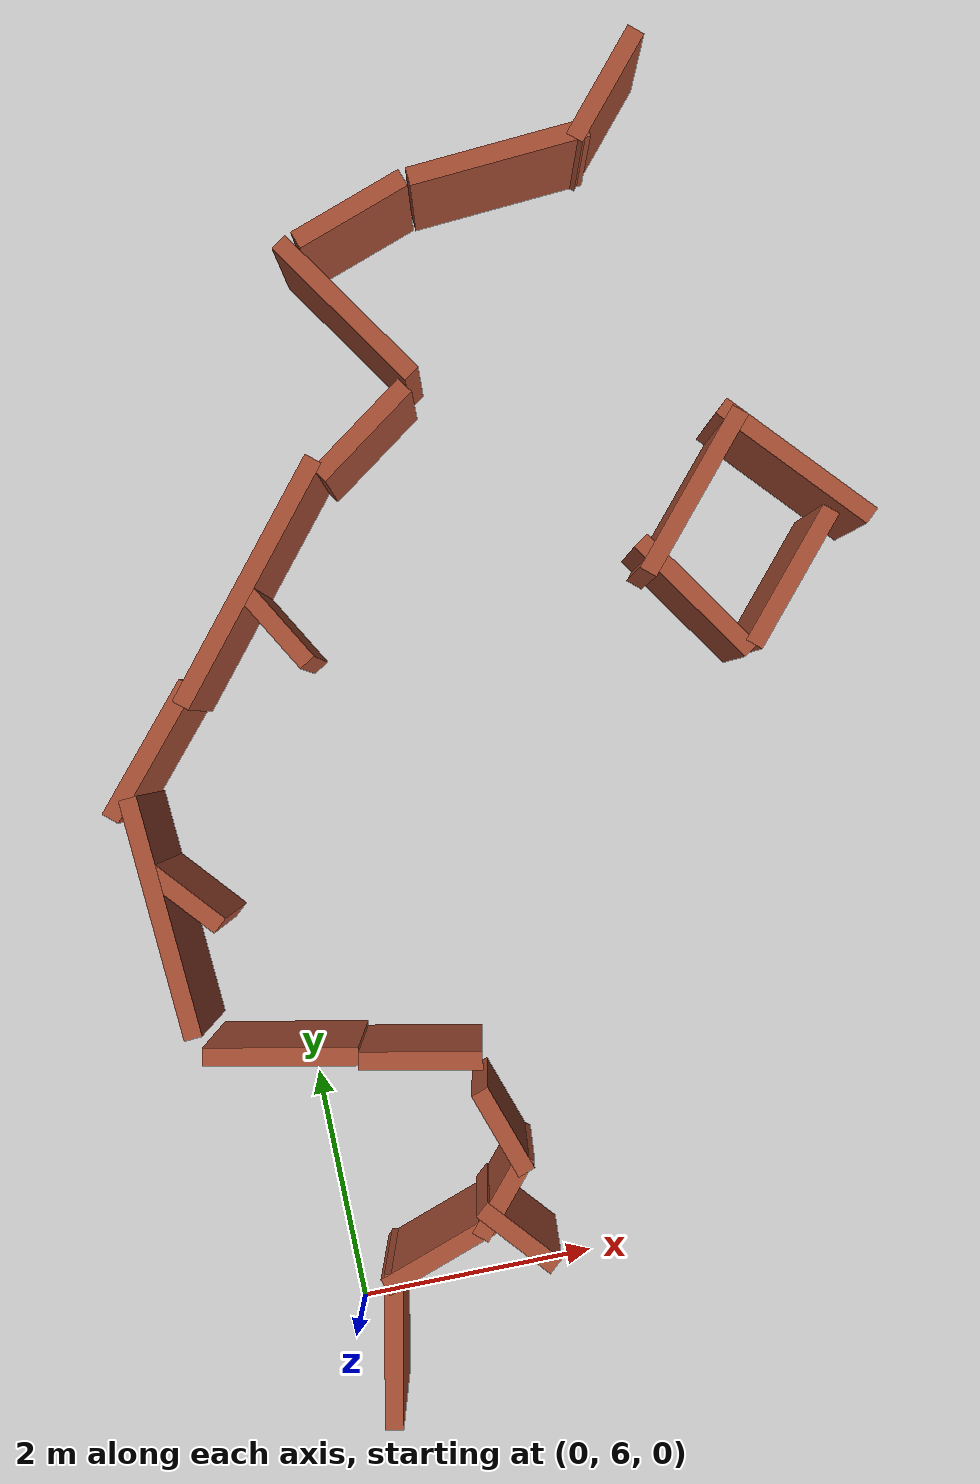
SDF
<sdf version="1.6">
 <world name="default">
  <model name="ground_plane">
   <static>1</static>
   <link name="link">
    <collision name="collision">
     <geometry><plane><normal>0 0 1</normal><size>100 100</size></plane></geometry>
     <surface><friction><ode><mu>100</mu><mu2>50</mu2></ode></friction></surface>
    </collision>
    <visual name="visual">
     <cast_shadows>0</cast_shadows>
     <geometry><plane><normal>0 0 1</normal><size>100 100</size></plane></geometry>
     <material>
      <script><uri>file://media/materials/scripts/gazebo.material</uri><name>Gazebo/Gray</name></script>
     </material>
    </visual>
   </link>
  </model>
  <model name="room5">
   <link name="Wall_3">
    <pose>2.38698 -7.56027 0 0 -0 1.0472</pose>
    <visual name="Wall_3_Visual">
     <pose>0 0 1.25 0 -0 0</pose>
     <geometry><box><size>1 0.15 2.5</size></box></geometry>
     <material>
      <script><uri>file://media/materials/scripts/gazebo.material</uri><name>Gazebo/Bricks</name></script>
      <ambient>1 1 1 1</ambient>
      <shader type="pixel"/>
     </material>
     <meta><layer>0</layer></meta>
    </visual>
    <collision name="Wall_3_Collision">
     <pose>0 0 1.25 0 -0 0</pose>
     <geometry><box><size>1 0.15 2.5</size></box></geometry>
     <surface>
      <friction>
       <ode><mu>1</mu><mu2>1</mu2><fdir1>0 0 0</fdir1><slip1>0</slip1><slip2>0</slip2></ode>
       <torsional>
        <coefficient>1</coefficient>
        <patch_radius>0</patch_radius>
        <surface_radius>0</surface_radius>
        <use_patch_radius>1</use_patch_radius>
        <ode><slip>0</slip></ode>
       </torsional>
      </friction>
      <bounce><restitution_coefficient>0</restitution_coefficient><threshold>1e+06</threshold></bounce>
      <contact>
       <collide_without_contact>0</collide_without_contact>
       <collide_without_contact_bitmask>1</collide_without_contact_bitmask>
       <collide_bitmask>1</collide_bitmask>
       <ode>
        <soft_cfm>0</soft_cfm>
        <soft_erp>0.2</soft_erp>
        <kp>1e+13</kp>
        <kd>1</kd>
        <max_vel>0.01</max_vel>
        <min_depth>0</min_depth>
       </ode>
       <bullet>
        <split_impulse>1</split_impulse>
        <split_impulse_penetration_threshold>-0.01</split_impulse_penetration_threshold>
        <soft_cfm>0</soft_cfm>
        <soft_erp>0.2</soft_erp>
        <kp>1e+13</kp>
        <kd>1</kd>
       </bullet>
      </contact>
     </surface>
    </collision>
   </link>
   <link name="Wall_32">
    <pose>5.28652 -3.58139 0 0 -0 1.07102</pose>
    <visual name="Wall_32_Visual">
     <pose>0 0 1.25 0 -0 0</pose>
     <geometry><box><size>2.25 0.15 2.5</size></box></geometry>
     <material>
      <script><uri>file://media/materials/scripts/gazebo.material</uri><name>Gazebo/Bricks</name></script>
      <ambient>1 1 1 1</ambient>
      <shader type="pixel"/>
     </material>
     <meta><layer>0</layer></meta>
    </visual>
    <collision name="Wall_32_Collision">
     <pose>0 0 1.25 0 -0 0</pose>
     <geometry><box><size>2.25 0.15 2.5</size></box></geometry>
     <surface>
      <friction>
       <ode><mu>1</mu><mu2>1</mu2><fdir1>0 0 0</fdir1><slip1>0</slip1><slip2>0</slip2></ode>
       <torsional>
        <coefficient>1</coefficient>
        <patch_radius>0</patch_radius>
        <surface_radius>0</surface_radius>
        <use_patch_radius>1</use_patch_radius>
        <ode><slip>0</slip></ode>
       </torsional>
      </friction>
      <bounce><restitution_coefficient>0</restitution_coefficient><threshold>1e+06</threshold></bounce>
      <contact>
       <collide_without_contact>0</collide_without_contact>
       <collide_without_contact_bitmask>1</collide_without_contact_bitmask>
       <collide_bitmask>1</collide_bitmask>
       <ode>
        <soft_cfm>0</soft_cfm>
        <soft_erp>0.2</soft_erp>
        <kp>1e+13</kp>
        <kd>1</kd>
        <max_vel>0.01</max_vel>
        <min_depth>0</min_depth>
       </ode>
       <bullet>
        <split_impulse>1</split_impulse>
        <split_impulse_penetration_threshold>-0.01</split_impulse_penetration_threshold>
        <soft_cfm>0</soft_cfm>
        <soft_erp>0.2</soft_erp>
        <kp>1e+13</kp>
        <kd>1</kd>
       </bullet>
      </contact>
     </surface>
    </collision>
   </link>
   <link name="Wall_33">
    <pose>5.99667 -0.885929 0 0 -0 1.8326</pose>
    <visual name="Wall_33_Visual">
     <pose>0 0 1.25 0 -0 0</pose>
     <geometry><box><size>2 0.15 2.5</size></box></geometry>
     <material>
      <script><uri>file://media/materials/scripts/gazebo.material</uri><name>Gazebo/Bricks</name></script>
      <ambient>1 1 1 1</ambient>
      <shader type="pixel"/>
     </material>
     <meta><layer>0</layer></meta>
    </visual>
    <collision name="Wall_33_Collision">
     <pose>0 0 1.25 0 -0 0</pose>
     <geometry><box><size>2 0.15 2.5</size></box></geometry>
     <surface>
      <friction>
       <ode><mu>1</mu><mu2>1</mu2><fdir1>0 0 0</fdir1><slip1>0</slip1><slip2>0</slip2></ode>
       <torsional>
        <coefficient>1</coefficient>
        <patch_radius>0</patch_radius>
        <surface_radius>0</surface_radius>
        <use_patch_radius>1</use_patch_radius>
        <ode><slip>0</slip></ode>
       </torsional>
      </friction>
      <bounce><restitution_coefficient>0</restitution_coefficient><threshold>1e+06</threshold></bounce>
      <contact>
       <collide_without_contact>0</collide_without_contact>
       <collide_without_contact_bitmask>1</collide_without_contact_bitmask>
       <collide_bitmask>1</collide_bitmask>
       <ode>
        <soft_cfm>0</soft_cfm>
        <soft_erp>0.2</soft_erp>
        <kp>1e+13</kp>
        <kd>1</kd>
        <max_vel>0.01</max_vel>
        <min_depth>0</min_depth>
       </ode>
       <bullet>
        <split_impulse>1</split_impulse>
        <split_impulse_penetration_threshold>-0.01</split_impulse_penetration_threshold>
        <soft_cfm>0</soft_cfm>
        <soft_erp>0.2</soft_erp>
        <kp>1e+13</kp>
        <kd>1</kd>
       </bullet>
      </contact>
     </surface>
    </collision>
   </link>
   <link name="Wall_34">
    <pose>5.03984 0.226363 0 0 -0 0</pose>
    <visual name="Wall_34_Visual">
     <pose>0 0 1.25 0 -0 0</pose>
     <geometry><box><size>1.25 0.15 2.5</size></box></geometry>
     <material>
      <script><uri>file://media/materials/scripts/gazebo.material</uri><name>Gazebo/Bricks</name></script>
      <ambient>1 1 1 1</ambient>
      <shader type="pixel"/>
     </material>
     <meta><layer>0</layer></meta>
    </visual>
    <collision name="Wall_34_Collision">
     <pose>0 0 1.25 0 -0 0</pose>
     <geometry><box><size>1.25 0.15 2.5</size></box></geometry>
     <surface>
      <friction>
       <ode><mu>1</mu><mu2>1</mu2><fdir1>0 0 0</fdir1><slip1>0</slip1><slip2>0</slip2></ode>
       <torsional>
        <coefficient>1</coefficient>
        <patch_radius>0</patch_radius>
        <surface_radius>0</surface_radius>
        <use_patch_radius>1</use_patch_radius>
        <ode><slip>0</slip></ode>
       </torsional>
      </friction>
      <bounce><restitution_coefficient>0</restitution_coefficient><threshold>1e+06</threshold></bounce>
      <contact>
       <collide_without_contact>0</collide_without_contact>
       <collide_without_contact_bitmask>1</collide_without_contact_bitmask>
       <collide_bitmask>1</collide_bitmask>
       <ode>
        <soft_cfm>0</soft_cfm>
        <soft_erp>0.2</soft_erp>
        <kp>1e+13</kp>
        <kd>1</kd>
        <max_vel>0.01</max_vel>
        <min_depth>0</min_depth>
       </ode>
       <bullet>
        <split_impulse>1</split_impulse>
        <split_impulse_penetration_threshold>-0.01</split_impulse_penetration_threshold>
        <soft_cfm>0</soft_cfm>
        <soft_erp>0.2</soft_erp>
        <kp>1e+13</kp>
        <kd>1</kd>
       </bullet>
      </contact>
     </surface>
    </collision>
   </link>
   <link name="Wall_35">
    <pose>6.08077 -2.2305 0 0 -0 1.0472</pose>
    <visual name="Wall_35_Visual">
     <pose>0 0 1.25 0 -0 0</pose>
     <geometry><box><size>1.25 0.15 2.5</size></box></geometry>
     <material>
      <script><uri>file://media/materials/scripts/gazebo.material</uri><name>Gazebo/Bricks</name></script>
      <ambient>1 1 1 1</ambient>
      <shader type="pixel"/>
     </material>
     <meta><layer>0</layer></meta>
    </visual>
    <collision name="Wall_35_Collision">
     <pose>0 0 1.25 0 -0 0</pose>
     <geometry><box><size>1.25 0.15 2.5</size></box></geometry>
     <surface>
      <friction>
       <ode><mu>1</mu><mu2>1</mu2><fdir1>0 0 0</fdir1><slip1>0</slip1><slip2>0</slip2></ode>
       <torsional>
        <coefficient>1</coefficient>
        <patch_radius>0</patch_radius>
        <surface_radius>0</surface_radius>
        <use_patch_radius>1</use_patch_radius>
        <ode><slip>0</slip></ode>
       </torsional>
      </friction>
      <bounce><restitution_coefficient>0</restitution_coefficient><threshold>1e+06</threshold></bounce>
      <contact>
       <collide_without_contact>0</collide_without_contact>
       <collide_without_contact_bitmask>1</collide_without_contact_bitmask>
       <collide_bitmask>1</collide_bitmask>
       <ode>
        <soft_cfm>0</soft_cfm>
        <soft_erp>0.2</soft_erp>
        <kp>1e+13</kp>
        <kd>1</kd>
        <max_vel>0.01</max_vel>
        <min_depth>0</min_depth>
       </ode>
       <bullet>
        <split_impulse>1</split_impulse>
        <split_impulse_penetration_threshold>-0.01</split_impulse_penetration_threshold>
        <soft_cfm>0</soft_cfm>
        <soft_erp>0.2</soft_erp>
        <kp>1e+13</kp>
        <kd>1</kd>
       </bullet>
      </contact>
     </surface>
    </collision>
   </link>
   <link name="Wall_36">
    <pose>3.91729 0.265768 0 0 -0 3.14159</pose>
    <visual name="Wall_36_Visual">
     <pose>0 0 1.25 0 -0 0</pose>
     <geometry><box><size>1 0.15 2.5</size></box></geometry>
     <material>
      <script><uri>file://media/materials/scripts/gazebo.material</uri><name>Gazebo/Bricks</name></script>
      <ambient>1 1 1 1</ambient>
      <shader type="pixel"/>
     </material>
     <meta><layer>0</layer></meta>
    </visual>
    <collision name="Wall_36_Collision">
     <pose>0 0 1.25 0 -0 0</pose>
     <geometry><box><size>1 0.15 2.5</size></box></geometry>
     <surface>
      <friction>
       <ode><mu>1</mu><mu2>1</mu2><fdir1>0 0 0</fdir1><slip1>0</slip1><slip2>0</slip2></ode>
       <torsional>
        <coefficient>1</coefficient>
        <patch_radius>0</patch_radius>
        <surface_radius>0</surface_radius>
        <use_patch_radius>1</use_patch_radius>
        <ode><slip>0</slip></ode>
       </torsional>
      </friction>
      <bounce><restitution_coefficient>0</restitution_coefficient><threshold>1e+06</threshold></bounce>
      <contact>
       <collide_without_contact>0</collide_without_contact>
       <collide_without_contact_bitmask>1</collide_without_contact_bitmask>
       <collide_bitmask>1</collide_bitmask>
       <ode>
        <soft_cfm>0</soft_cfm>
        <soft_erp>0.2</soft_erp>
        <kp>1e+13</kp>
        <kd>1</kd>
        <max_vel>0.01</max_vel>
        <min_depth>0</min_depth>
       </ode>
       <bullet>
        <split_impulse>1</split_impulse>
        <split_impulse_penetration_threshold>-0.01</split_impulse_penetration_threshold>
        <soft_cfm>0</soft_cfm>
        <soft_erp>0.2</soft_erp>
        <kp>1e+13</kp>
        <kd>1</kd>
       </bullet>
      </contact>
     </surface>
    </collision>
   </link>
   <link name="Wall_37">
    <pose>3.25761 0.842357 0 0 -0 2.0944</pose>
    <visual name="Wall_37_Visual">
     <pose>0 0 1.25 0 -0 0</pose>
     <geometry><box><size>0.75 0.15 2.5</size></box></geometry>
     <material>
      <script><uri>file://media/materials/scripts/gazebo.material</uri><name>Gazebo/Bricks</name></script>
      <ambient>1 1 1 1</ambient>
      <shader type="pixel"/>
     </material>
     <meta><layer>0</layer></meta>
    </visual>
    <collision name="Wall_37_Collision">
     <pose>0 0 1.25 0 -0 0</pose>
     <geometry><box><size>0.75 0.15 2.5</size></box></geometry>
     <surface>
      <friction>
       <ode><mu>1</mu><mu2>1</mu2><fdir1>0 0 0</fdir1><slip1>0</slip1><slip2>0</slip2></ode>
       <torsional>
        <coefficient>1</coefficient>
        <patch_radius>0</patch_radius>
        <surface_radius>0</surface_radius>
        <use_patch_radius>1</use_patch_radius>
        <ode><slip>0</slip></ode>
       </torsional>
      </friction>
      <bounce><restitution_coefficient>0</restitution_coefficient><threshold>1e+06</threshold></bounce>
      <contact>
       <collide_without_contact>0</collide_without_contact>
       <collide_without_contact_bitmask>1</collide_without_contact_bitmask>
       <collide_bitmask>1</collide_bitmask>
       <ode>
        <soft_cfm>0</soft_cfm>
        <soft_erp>0.2</soft_erp>
        <kp>1e+13</kp>
        <kd>1</kd>
        <max_vel>0.01</max_vel>
        <min_depth>0</min_depth>
       </ode>
       <bullet>
        <split_impulse>1</split_impulse>
        <split_impulse_penetration_threshold>-0.01</split_impulse_penetration_threshold>
        <soft_cfm>0</soft_cfm>
        <soft_erp>0.2</soft_erp>
        <kp>1e+13</kp>
        <kd>1</kd>
       </bullet>
      </contact>
     </surface>
    </collision>
   </link>
   <link name="Wall_37_clone">
    <pose>5.05026 -3.21576 0 0 0 -0.85261</pose>
    <visual name="Wall_37_Visual">
     <pose>0 0 1.25 0 -0 0</pose>
     <geometry><box><size>0.75 0.15 2.5</size></box></geometry>
     <material>
      <script><uri>file://media/materials/scripts/gazebo.material</uri><name>Gazebo/Bricks</name></script>
      <ambient>1 1 1 1</ambient>
      <shader type="pixel"/>
     </material>
     <meta><layer>0</layer></meta>
    </visual>
    <collision name="Wall_37_Collision">
     <pose>0 0 1.25 0 -0 0</pose>
     <geometry><box><size>0.75 0.15 2.5</size></box></geometry>
     <surface>
      <friction>
       <ode><mu>1</mu><mu2>1</mu2><fdir1>0 0 0</fdir1><slip1>0</slip1><slip2>0</slip2></ode>
       <torsional>
        <coefficient>1</coefficient>
        <patch_radius>0</patch_radius>
        <surface_radius>0</surface_radius>
        <use_patch_radius>1</use_patch_radius>
        <ode><slip>0</slip></ode>
       </torsional>
      </friction>
      <bounce><restitution_coefficient>0</restitution_coefficient><threshold>1e+06</threshold></bounce>
      <contact>
       <collide_without_contact>0</collide_without_contact>
       <collide_without_contact_bitmask>1</collide_without_contact_bitmask>
       <collide_bitmask>1</collide_bitmask>
       <ode>
        <soft_cfm>0</soft_cfm>
        <soft_erp>0.2</soft_erp>
        <kp>1e+13</kp>
        <kd>1</kd>
        <max_vel>0.01</max_vel>
        <min_depth>0</min_depth>
       </ode>
       <bullet>
        <split_impulse>1</split_impulse>
        <split_impulse_penetration_threshold>-0.01</split_impulse_penetration_threshold>
        <soft_cfm>0</soft_cfm>
        <soft_erp>0.2</soft_erp>
        <kp>1e+13</kp>
        <kd>1</kd>
       </bullet>
      </contact>
     </surface>
    </collision>
   </link>
   <link name="Wall_37_clone_clone_3">
    <pose>3.13462 1.69174 0 0 -0 2.48357</pose>
    <visual name="Wall_37_Visual">
     <pose>0 0 1.25 0 -0 0</pose>
     <geometry><box><size>0.75 0.15 2.5</size></box></geometry>
     <material>
      <script><uri>file://media/materials/scripts/gazebo.material</uri><name>Gazebo/Bricks</name></script>
      <ambient>1 1 1 1</ambient>
      <shader type="pixel"/>
     </material>
     <meta><layer>0</layer></meta>
    </visual>
    <collision name="Wall_37_Collision">
     <pose>0 0 1.25 0 -0 0</pose>
     <geometry><box><size>0.75 0.15 2.5</size></box></geometry>
     <surface>
      <friction>
       <ode><mu>1</mu><mu2>1</mu2><fdir1>0 0 0</fdir1><slip1>0</slip1><slip2>0</slip2></ode>
       <torsional>
        <coefficient>1</coefficient>
        <patch_radius>0</patch_radius>
        <surface_radius>0</surface_radius>
        <use_patch_radius>1</use_patch_radius>
        <ode><slip>0</slip></ode>
       </torsional>
      </friction>
      <bounce><restitution_coefficient>0</restitution_coefficient><threshold>1e+06</threshold></bounce>
      <contact>
       <collide_without_contact>0</collide_without_contact>
       <collide_without_contact_bitmask>1</collide_without_contact_bitmask>
       <collide_bitmask>1</collide_bitmask>
       <ode>
        <soft_cfm>0</soft_cfm>
        <soft_erp>0.2</soft_erp>
        <kp>1e+13</kp>
        <kd>1</kd>
        <max_vel>0.01</max_vel>
        <min_depth>0</min_depth>
       </ode>
       <bullet>
        <split_impulse>1</split_impulse>
        <split_impulse_penetration_threshold>-0.01</split_impulse_penetration_threshold>
        <soft_cfm>0</soft_cfm>
        <soft_erp>0.2</soft_erp>
        <kp>1e+13</kp>
        <kd>1</kd>
       </bullet>
      </contact>
     </surface>
    </collision>
   </link>
   <link name="Wall_37_clone_clone_4">
    <pose>5.81387 -1.05436 0 0 -0 2.48357</pose>
    <visual name="Wall_37_Visual">
     <pose>0 0 1.25 0 -0 0</pose>
     <geometry><box><size>0.75 0.15 2.5</size></box></geometry>
     <material>
      <script><uri>file://media/materials/scripts/gazebo.material</uri><name>Gazebo/Bricks</name></script>
      <ambient>1 1 1 1</ambient>
      <shader type="pixel"/>
     </material>
     <meta><layer>0</layer></meta>
    </visual>
    <collision name="Wall_37_Collision">
     <pose>0 0 1.25 0 -0 0</pose>
     <geometry><box><size>0.75 0.15 2.5</size></box></geometry>
     <surface>
      <friction>
       <ode><mu>1</mu><mu2>1</mu2><fdir1>0 0 0</fdir1><slip1>0</slip1><slip2>0</slip2></ode>
       <torsional>
        <coefficient>1</coefficient>
        <patch_radius>0</patch_radius>
        <surface_radius>0</surface_radius>
        <use_patch_radius>1</use_patch_radius>
        <ode><slip>0</slip></ode>
       </torsional>
      </friction>
      <bounce><restitution_coefficient>0</restitution_coefficient><threshold>1e+06</threshold></bounce>
      <contact>
       <collide_without_contact>0</collide_without_contact>
       <collide_without_contact_bitmask>1</collide_without_contact_bitmask>
       <collide_bitmask>1</collide_bitmask>
       <ode>
        <soft_cfm>0</soft_cfm>
        <soft_erp>0.2</soft_erp>
        <kp>1e+13</kp>
        <kd>1</kd>
        <max_vel>0.01</max_vel>
        <min_depth>0</min_depth>
       </ode>
       <bullet>
        <split_impulse>1</split_impulse>
        <split_impulse_penetration_threshold>-0.01</split_impulse_penetration_threshold>
        <soft_cfm>0</soft_cfm>
        <soft_erp>0.2</soft_erp>
        <kp>1e+13</kp>
        <kd>1</kd>
       </bullet>
      </contact>
     </surface>
    </collision>
   </link>
   <link name="Wall_38">
    <pose>3.25761 1.36197 0 0 -0 1.0472</pose>
    <visual name="Wall_38_Visual">
     <pose>0 0 1.25 0 -0 0</pose>
     <geometry><box><size>0.75 0.15 2.5</size></box></geometry>
     <material>
      <script><uri>file://media/materials/scripts/gazebo.material</uri><name>Gazebo/Bricks</name></script>
      <ambient>1 1 1 1</ambient>
      <shader type="pixel"/>
     </material>
     <meta><layer>0</layer></meta>
    </visual>
    <collision name="Wall_38_Collision">
     <pose>0 0 1.25 0 -0 0</pose>
     <geometry><box><size>0.75 0.15 2.5</size></box></geometry>
     <surface>
      <friction>
       <ode><mu>1</mu><mu2>1</mu2><fdir1>0 0 0</fdir1><slip1>0</slip1><slip2>0</slip2></ode>
       <torsional>
        <coefficient>1</coefficient>
        <patch_radius>0</patch_radius>
        <surface_radius>0</surface_radius>
        <use_patch_radius>1</use_patch_radius>
        <ode><slip>0</slip></ode>
       </torsional>
      </friction>
      <bounce><restitution_coefficient>0</restitution_coefficient><threshold>1e+06</threshold></bounce>
      <contact>
       <collide_without_contact>0</collide_without_contact>
       <collide_without_contact_bitmask>1</collide_without_contact_bitmask>
       <collide_bitmask>1</collide_bitmask>
       <ode>
        <soft_cfm>0</soft_cfm>
        <soft_erp>0.2</soft_erp>
        <kp>1e+13</kp>
        <kd>1</kd>
        <max_vel>0.01</max_vel>
        <min_depth>0</min_depth>
       </ode>
       <bullet>
        <split_impulse>1</split_impulse>
        <split_impulse_penetration_threshold>-0.01</split_impulse_penetration_threshold>
        <soft_cfm>0</soft_cfm>
        <soft_erp>0.2</soft_erp>
        <kp>1e+13</kp>
        <kd>1</kd>
       </bullet>
      </contact>
     </surface>
    </collision>
   </link>
   <link name="Wall_39">
    <pose>3.77567 1.83428 0 0 -0 0.523599</pose>
    <visual name="Wall_39_Visual">
     <pose>0 0 1.25 0 -0 0</pose>
     <geometry><box><size>1 0.15 2.5</size></box></geometry>
     <material>
      <script><uri>file://media/materials/scripts/gazebo.material</uri><name>Gazebo/Bricks</name></script>
      <ambient>1 1 1 1</ambient>
      <shader type="pixel"/>
     </material>
     <meta><layer>0</layer></meta>
    </visual>
    <collision name="Wall_39_Collision">
     <pose>0 0 1.25 0 -0 0</pose>
     <geometry><box><size>1 0.15 2.5</size></box></geometry>
     <surface>
      <friction>
       <ode><mu>1</mu><mu2>1</mu2><fdir1>0 0 0</fdir1><slip1>0</slip1><slip2>0</slip2></ode>
       <torsional>
        <coefficient>1</coefficient>
        <patch_radius>0</patch_radius>
        <surface_radius>0</surface_radius>
        <use_patch_radius>1</use_patch_radius>
        <ode><slip>0</slip></ode>
       </torsional>
      </friction>
      <bounce><restitution_coefficient>0</restitution_coefficient><threshold>1e+06</threshold></bounce>
      <contact>
       <collide_without_contact>0</collide_without_contact>
       <collide_without_contact_bitmask>1</collide_without_contact_bitmask>
       <collide_bitmask>1</collide_bitmask>
       <ode>
        <soft_cfm>0</soft_cfm>
        <soft_erp>0.2</soft_erp>
        <kp>1e+13</kp>
        <kd>1</kd>
        <max_vel>0.01</max_vel>
        <min_depth>0</min_depth>
       </ode>
       <bullet>
        <split_impulse>1</split_impulse>
        <split_impulse_penetration_threshold>-0.01</split_impulse_penetration_threshold>
        <soft_cfm>0</soft_cfm>
        <soft_erp>0.2</soft_erp>
        <kp>1e+13</kp>
        <kd>1</kd>
       </bullet>
      </contact>
     </surface>
    </collision>
   </link>
   <link name="Wall_4">
    <pose>3.25148 -7.01751 0 0 -0 0.261799</pose>
    <visual name="Wall_4_Visual">
     <pose>0 0 1.25 0 -0 0</pose>
     <geometry><box><size>1.5 0.15 2.5</size></box></geometry>
     <material>
      <script><uri>file://media/materials/scripts/gazebo.material</uri><name>Gazebo/Bricks</name></script>
      <ambient>1 1 1 1</ambient>
      <shader type="pixel"/>
     </material>
     <meta><layer>0</layer></meta>
    </visual>
    <collision name="Wall_4_Collision">
     <pose>0 0 1.25 0 -0 0</pose>
     <geometry><box><size>1.5 0.15 2.5</size></box></geometry>
     <surface>
      <friction>
       <ode><mu>1</mu><mu2>1</mu2><fdir1>0 0 0</fdir1><slip1>0</slip1><slip2>0</slip2></ode>
       <torsional>
        <coefficient>1</coefficient>
        <patch_radius>0</patch_radius>
        <surface_radius>0</surface_radius>
        <use_patch_radius>1</use_patch_radius>
        <ode><slip>0</slip></ode>
       </torsional>
      </friction>
      <bounce><restitution_coefficient>0</restitution_coefficient><threshold>1e+06</threshold></bounce>
      <contact>
       <collide_without_contact>0</collide_without_contact>
       <collide_without_contact_bitmask>1</collide_without_contact_bitmask>
       <collide_bitmask>1</collide_bitmask>
       <ode>
        <soft_cfm>0</soft_cfm>
        <soft_erp>0.2</soft_erp>
        <kp>1e+13</kp>
        <kd>1</kd>
        <max_vel>0.01</max_vel>
        <min_depth>0</min_depth>
       </ode>
       <bullet>
        <split_impulse>1</split_impulse>
        <split_impulse_penetration_threshold>-0.01</split_impulse_penetration_threshold>
        <soft_cfm>0</soft_cfm>
        <soft_erp>0.2</soft_erp>
        <kp>1e+13</kp>
        <kd>1</kd>
       </bullet>
      </contact>
     </surface>
    </collision>
   </link>
   <link name="Wall_40">
    <pose>4.14373 2.59678 0 0 -0 1.5708</pose>
    <visual name="Wall_40_Visual">
     <pose>0 0 1.25 0 -0 0</pose>
     <geometry><box><size>1.25 0.15 2.5</size></box></geometry>
     <material>
      <script><uri>file://media/materials/scripts/gazebo.material</uri><name>Gazebo/Bricks</name></script>
      <ambient>1 1 1 1</ambient>
      <shader type="pixel"/>
     </material>
     <meta><layer>0</layer></meta>
    </visual>
    <collision name="Wall_40_Collision">
     <pose>0 0 1.25 0 -0 0</pose>
     <geometry><box><size>1.25 0.15 2.5</size></box></geometry>
     <surface>
      <friction>
       <ode><mu>1</mu><mu2>1</mu2><fdir1>0 0 0</fdir1><slip1>0</slip1><slip2>0</slip2></ode>
       <torsional>
        <coefficient>1</coefficient>
        <patch_radius>0</patch_radius>
        <surface_radius>0</surface_radius>
        <use_patch_radius>1</use_patch_radius>
        <ode><slip>0</slip></ode>
       </torsional>
      </friction>
      <bounce><restitution_coefficient>0</restitution_coefficient><threshold>1e+06</threshold></bounce>
      <contact>
       <collide_without_contact>0</collide_without_contact>
       <collide_without_contact_bitmask>1</collide_without_contact_bitmask>
       <collide_bitmask>1</collide_bitmask>
       <ode>
        <soft_cfm>0</soft_cfm>
        <soft_erp>0.2</soft_erp>
        <kp>1e+13</kp>
        <kd>1</kd>
        <max_vel>0.01</max_vel>
        <min_depth>0</min_depth>
       </ode>
       <bullet>
        <split_impulse>1</split_impulse>
        <split_impulse_penetration_threshold>-0.01</split_impulse_penetration_threshold>
        <soft_cfm>0</soft_cfm>
        <soft_erp>0.2</soft_erp>
        <kp>1e+13</kp>
        <kd>1</kd>
       </bullet>
      </contact>
     </surface>
    </collision>
   </link>
   <link name="Wall_5">
    <pose>4.48426 -5.77637 0 0 -0 2.35619</pose>
    <visual name="Wall_5_Visual">
     <pose>0 0 1.25 0 -0 0</pose>
     <geometry><box><size>1.5 0.15 2.5</size></box></geometry>
     <material>
      <script><uri>file://media/materials/scripts/gazebo.material</uri><name>Gazebo/Bricks</name></script>
      <ambient>1 1 1 1</ambient>
      <shader type="pixel"/>
     </material>
     <meta><layer>0</layer></meta>
    </visual>
    <collision name="Wall_5_Collision">
     <pose>0 0 1.25 0 -0 0</pose>
     <geometry><box><size>1.5 0.15 2.5</size></box></geometry>
     <surface>
      <friction>
       <ode><mu>1</mu><mu2>1</mu2><fdir1>0 0 0</fdir1><slip1>0</slip1><slip2>0</slip2></ode>
       <torsional>
        <coefficient>1</coefficient>
        <patch_radius>0</patch_radius>
        <surface_radius>0</surface_radius>
        <use_patch_radius>1</use_patch_radius>
        <ode><slip>0</slip></ode>
       </torsional>
      </friction>
      <bounce><restitution_coefficient>0</restitution_coefficient><threshold>1e+06</threshold></bounce>
      <contact>
       <collide_without_contact>0</collide_without_contact>
       <collide_without_contact_bitmask>1</collide_without_contact_bitmask>
       <collide_bitmask>1</collide_bitmask>
       <ode>
        <soft_cfm>0</soft_cfm>
        <soft_erp>0.2</soft_erp>
        <kp>1e+13</kp>
        <kd>1</kd>
        <max_vel>0.01</max_vel>
        <min_depth>0</min_depth>
       </ode>
       <bullet>
        <split_impulse>1</split_impulse>
        <split_impulse_penetration_threshold>-0.01</split_impulse_penetration_threshold>
        <soft_cfm>0</soft_cfm>
        <soft_erp>0.2</soft_erp>
        <kp>1e+13</kp>
        <kd>1</kd>
       </bullet>
      </contact>
     </surface>
    </collision>
   </link>
   <link name="Wall_6">
    <pose>4.44709 -6.56815 0 0 -0 0.523599</pose>
    <visual name="Wall_6_Visual">
     <pose>0 0 1.25 0 -0 0</pose>
     <geometry><box><size>1 0.15 2.5</size></box></geometry>
     <material>
      <script><uri>file://media/materials/scripts/gazebo.material</uri><name>Gazebo/Bricks</name></script>
      <ambient>1 1 1 1</ambient>
      <shader type="pixel"/>
     </material>
     <meta><layer>0</layer></meta>
    </visual>
    <collision name="Wall_6_Collision">
     <pose>0 0 1.25 0 -0 0</pose>
     <geometry><box><size>1 0.15 2.5</size></box></geometry>
     <surface>
      <friction>
       <ode><mu>1</mu><mu2>1</mu2><fdir1>0 0 0</fdir1><slip1>0</slip1><slip2>0</slip2></ode>
       <torsional>
        <coefficient>1</coefficient>
        <patch_radius>0</patch_radius>
        <surface_radius>0</surface_radius>
        <use_patch_radius>1</use_patch_radius>
        <ode><slip>0</slip></ode>
       </torsional>
      </friction>
      <bounce><restitution_coefficient>0</restitution_coefficient><threshold>1e+06</threshold></bounce>
      <contact>
       <collide_without_contact>0</collide_without_contact>
       <collide_without_contact_bitmask>1</collide_without_contact_bitmask>
       <collide_bitmask>1</collide_bitmask>
       <ode>
        <soft_cfm>0</soft_cfm>
        <soft_erp>0.2</soft_erp>
        <kp>1e+13</kp>
        <kd>1</kd>
        <max_vel>0.01</max_vel>
        <min_depth>0</min_depth>
       </ode>
       <bullet>
        <split_impulse>1</split_impulse>
        <split_impulse_penetration_threshold>-0.01</split_impulse_penetration_threshold>
        <soft_cfm>0</soft_cfm>
        <soft_erp>0.2</soft_erp>
        <kp>1e+13</kp>
        <kd>1</kd>
       </bullet>
      </contact>
     </surface>
    </collision>
   </link>
   <link name="Wall_61">
    <pose>1.69102 -4.29087 0 0 0 -2.0944</pose>
    <visual name="Wall_61_Visual">
     <pose>0 0 1.25 0 -0 0</pose>
     <geometry><box><size>1.5 0.15 2.5</size></box></geometry>
     <material>
      <script><uri>file://media/materials/scripts/gazebo.material</uri><name>Gazebo/Bricks</name></script>
      <ambient>1 1 1 1</ambient>
      <shader type="pixel"/>
     </material>
     <meta><layer>0</layer></meta>
    </visual>
    <collision name="Wall_61_Collision">
     <pose>0 0 1.25 0 -0 0</pose>
     <geometry><box><size>1.5 0.15 2.5</size></box></geometry>
     <surface>
      <friction>
       <ode><mu>1</mu><mu2>1</mu2><fdir1>0 0 0</fdir1><slip1>0</slip1><slip2>0</slip2></ode>
       <torsional>
        <coefficient>1</coefficient>
        <patch_radius>0</patch_radius>
        <surface_radius>0</surface_radius>
        <use_patch_radius>1</use_patch_radius>
        <ode><slip>0</slip></ode>
       </torsional>
      </friction>
      <bounce><restitution_coefficient>0</restitution_coefficient><threshold>1e+06</threshold></bounce>
      <contact>
       <collide_without_contact>0</collide_without_contact>
       <collide_without_contact_bitmask>1</collide_without_contact_bitmask>
       <collide_bitmask>1</collide_bitmask>
       <ode>
        <soft_cfm>0</soft_cfm>
        <soft_erp>0.2</soft_erp>
        <kp>1e+13</kp>
        <kd>1</kd>
        <max_vel>0.01</max_vel>
        <min_depth>0</min_depth>
       </ode>
       <bullet>
        <split_impulse>1</split_impulse>
        <split_impulse_penetration_threshold>-0.01</split_impulse_penetration_threshold>
        <soft_cfm>0</soft_cfm>
        <soft_erp>0.2</soft_erp>
        <kp>1e+13</kp>
        <kd>1</kd>
       </bullet>
      </contact>
     </surface>
    </collision>
   </link>
   <link name="Wall_62">
    <pose>0.869031 -4.52659 0 0 0 -0.637566</pose>
    <visual name="Wall_62_Visual">
     <pose>0 0 1.25 0 -0 0</pose>
     <geometry><box><size>1.5 0.15 2.5</size></box></geometry>
     <material>
      <script><uri>file://media/materials/scripts/gazebo.material</uri><name>Gazebo/Bricks</name></script>
      <ambient>1 1 1 1</ambient>
      <shader type="pixel"/>
     </material>
     <meta><layer>0</layer></meta>
    </visual>
    <collision name="Wall_62_Collision">
     <pose>0 0 1.25 0 -0 0</pose>
     <geometry><box><size>1.5 0.15 2.5</size></box></geometry>
     <surface>
      <friction>
       <ode><mu>1</mu><mu2>1</mu2><fdir1>0 0 0</fdir1><slip1>0</slip1><slip2>0</slip2></ode>
       <torsional>
        <coefficient>1</coefficient>
        <patch_radius>0</patch_radius>
        <surface_radius>0</surface_radius>
        <use_patch_radius>1</use_patch_radius>
        <ode><slip>0</slip></ode>
       </torsional>
      </friction>
      <bounce><restitution_coefficient>0</restitution_coefficient><threshold>1e+06</threshold></bounce>
      <contact>
       <collide_without_contact>0</collide_without_contact>
       <collide_without_contact_bitmask>1</collide_without_contact_bitmask>
       <collide_bitmask>1</collide_bitmask>
       <ode>
        <soft_cfm>0</soft_cfm>
        <soft_erp>0.2</soft_erp>
        <kp>1e+13</kp>
        <kd>1</kd>
        <max_vel>0.01</max_vel>
        <min_depth>0</min_depth>
       </ode>
       <bullet>
        <split_impulse>1</split_impulse>
        <split_impulse_penetration_threshold>-0.01</split_impulse_penetration_threshold>
        <soft_cfm>0</soft_cfm>
        <soft_erp>0.2</soft_erp>
        <kp>1e+13</kp>
        <kd>1</kd>
       </bullet>
      </contact>
     </surface>
    </collision>
   </link>
   <link name="Wall_63">
    <pose>0.906897 -3.59855 0 0 -0 1.0472</pose>
    <visual name="Wall_63_Visual">
     <pose>0 0 1.25 0 -0 0</pose>
     <geometry><box><size>1.25 0.15 2.5</size></box></geometry>
     <material>
      <script><uri>file://media/materials/scripts/gazebo.material</uri><name>Gazebo/Bricks</name></script>
      <ambient>1 1 1 1</ambient>
      <shader type="pixel"/>
     </material>
     <meta><layer>0</layer></meta>
    </visual>
    <collision name="Wall_63_Collision">
     <pose>0 0 1.25 0 -0 0</pose>
     <geometry><box><size>1.25 0.15 2.5</size></box></geometry>
     <surface>
      <friction>
       <ode><mu>1</mu><mu2>1</mu2><fdir1>0 0 0</fdir1><slip1>0</slip1><slip2>0</slip2></ode>
       <torsional>
        <coefficient>1</coefficient>
        <patch_radius>0</patch_radius>
        <surface_radius>0</surface_radius>
        <use_patch_radius>1</use_patch_radius>
        <ode><slip>0</slip></ode>
       </torsional>
      </friction>
      <bounce><restitution_coefficient>0</restitution_coefficient><threshold>1e+06</threshold></bounce>
      <contact>
       <collide_without_contact>0</collide_without_contact>
       <collide_without_contact_bitmask>1</collide_without_contact_bitmask>
       <collide_bitmask>1</collide_bitmask>
       <ode>
        <soft_cfm>0</soft_cfm>
        <soft_erp>0.2</soft_erp>
        <kp>1e+13</kp>
        <kd>1</kd>
        <max_vel>0.01</max_vel>
        <min_depth>0</min_depth>
       </ode>
       <bullet>
        <split_impulse>1</split_impulse>
        <split_impulse_penetration_threshold>-0.01</split_impulse_penetration_threshold>
        <soft_cfm>0</soft_cfm>
        <soft_erp>0.2</soft_erp>
        <kp>1e+13</kp>
        <kd>1</kd>
       </bullet>
      </contact>
     </surface>
    </collision>
   </link>
   <link name="Wall_64">
    <pose>1.68234 -3.45343 0 0 -0 2.35619</pose>
    <visual name="Wall_64_Visual">
     <pose>0 0 1.25 0 -0 0</pose>
     <geometry><box><size>1.25 0.15 2.5</size></box></geometry>
     <material>
      <script><uri>file://media/materials/scripts/gazebo.material</uri><name>Gazebo/Bricks</name></script>
      <ambient>1 1 1 1</ambient>
      <shader type="pixel"/>
     </material>
     <meta><layer>0</layer></meta>
    </visual>
    <collision name="Wall_64_Collision">
     <pose>0 0 1.25 0 -0 0</pose>
     <geometry><box><size>1.25 0.15 2.5</size></box></geometry>
     <surface>
      <friction>
       <ode><mu>1</mu><mu2>1</mu2><fdir1>0 0 0</fdir1><slip1>0</slip1><slip2>0</slip2></ode>
       <torsional>
        <coefficient>1</coefficient>
        <patch_radius>0</patch_radius>
        <surface_radius>0</surface_radius>
        <use_patch_radius>1</use_patch_radius>
        <ode><slip>0</slip></ode>
       </torsional>
      </friction>
      <bounce><restitution_coefficient>0</restitution_coefficient><threshold>1e+06</threshold></bounce>
      <contact>
       <collide_without_contact>0</collide_without_contact>
       <collide_without_contact_bitmask>1</collide_without_contact_bitmask>
       <collide_bitmask>1</collide_bitmask>
       <ode>
        <soft_cfm>0</soft_cfm>
        <soft_erp>0.2</soft_erp>
        <kp>1e+13</kp>
        <kd>1</kd>
        <max_vel>0.01</max_vel>
        <min_depth>0</min_depth>
       </ode>
       <bullet>
        <split_impulse>1</split_impulse>
        <split_impulse_penetration_threshold>-0.01</split_impulse_penetration_threshold>
        <soft_cfm>0</soft_cfm>
        <soft_erp>0.2</soft_erp>
        <kp>1e+13</kp>
        <kd>1</kd>
       </bullet>
      </contact>
     </surface>
    </collision>
   </link>
   <link name="Wall_9">
    <pose>4.35594 -4.79355 0 0 -0 0.801934</pose>
    <visual name="Wall_9_Visual">
     <pose>0 0 1.25 0 -0 0</pose>
     <geometry><box><size>1 0.15 2.5</size></box></geometry>
     <material>
      <script><uri>file://media/materials/scripts/gazebo.material</uri><name>Gazebo/Bricks</name></script>
      <ambient>1 1 1 1</ambient>
      <shader type="pixel"/>
     </material>
     <meta><layer>0</layer></meta>
    </visual>
    <collision name="Wall_9_Collision">
     <pose>0 0 1.25 0 -0 0</pose>
     <geometry><box><size>1 0.15 2.5</size></box></geometry>
     <surface>
      <friction>
       <ode><mu>1</mu><mu2>1</mu2><fdir1>0 0 0</fdir1><slip1>0</slip1><slip2>0</slip2></ode>
       <torsional>
        <coefficient>1</coefficient>
        <patch_radius>0</patch_radius>
        <surface_radius>0</surface_radius>
        <use_patch_radius>1</use_patch_radius>
        <ode><slip>0</slip></ode>
       </torsional>
      </friction>
      <bounce><restitution_coefficient>0</restitution_coefficient><threshold>1e+06</threshold></bounce>
      <contact>
       <collide_without_contact>0</collide_without_contact>
       <collide_without_contact_bitmask>1</collide_without_contact_bitmask>
       <collide_bitmask>1</collide_bitmask>
       <ode>
        <soft_cfm>0</soft_cfm>
        <soft_erp>0.2</soft_erp>
        <kp>1e+13</kp>
        <kd>1</kd>
        <max_vel>0.01</max_vel>
        <min_depth>0</min_depth>
       </ode>
       <bullet>
        <split_impulse>1</split_impulse>
        <split_impulse_penetration_threshold>-0.01</split_impulse_penetration_threshold>
        <soft_cfm>0</soft_cfm>
        <soft_erp>0.2</soft_erp>
        <kp>1e+13</kp>
        <kd>1</kd>
       </bullet>
      </contact>
     </surface>
    </collision>
   </link>
   <static>1</static>
   <pose>4.86537 7.64263 0 0 -0 2.94701</pose>
  </model>
 </world>
</sdf>
